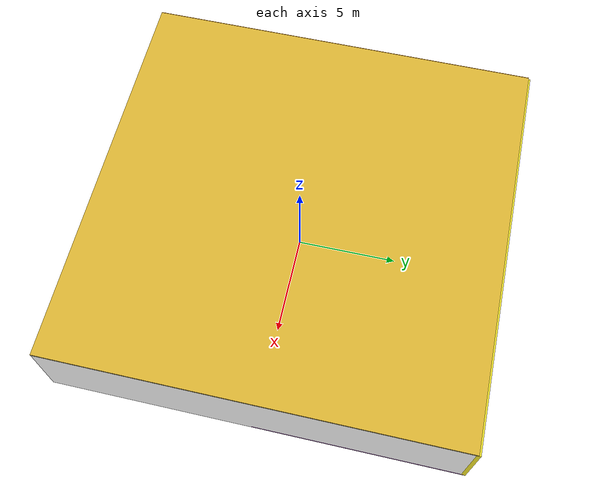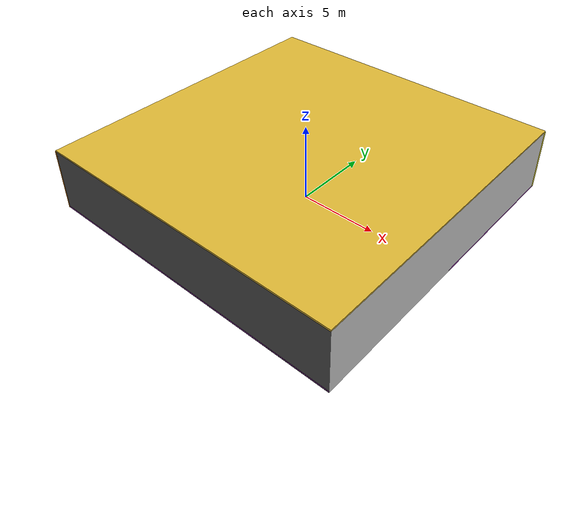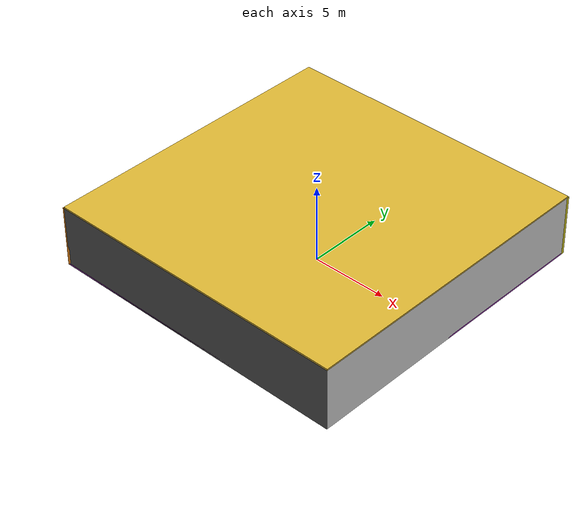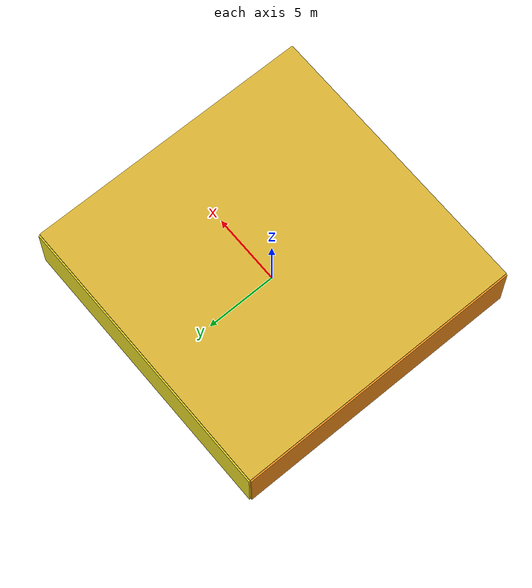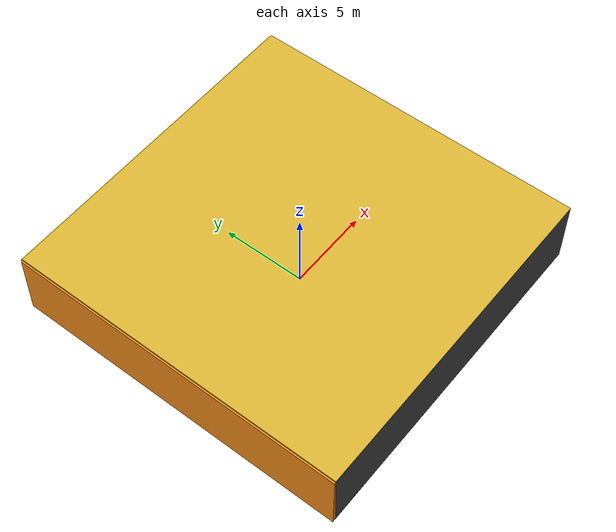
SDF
<sdf version="1.4">
 <world name="default">
  <physics type="ode">
   <max_step_size>0.001</max_step_size>
   <real_time_factor>1</real_time_factor>
   <real_time_update_rate>1000</real_time_update_rate>
   <gravity>0 0 -9.8</gravity>
  </physics>
  <scene><ambient>0.4 0.4 0.4 1</ambient><background>0.7 0.7 0.7 1</background><shadows>1</shadows></scene>
  <model name="Surrounding">
   <static>1</static>
   <link name="Ceiling">
    <collision name="Ceiling_Collision"><geometry><box><size>20 20 0.1</size></box></geometry></collision>
    <visual name="Ceiling_Visual">
     <geometry><box><size>20 20 0.1</size></box></geometry>
     <material>
      <script><uri>file://media/materials/scripts/gazebo.material</uri><name>Gazebo/Gold</name></script>
     </material>
    </visual>
    <pose>0 0 4.05 0 0 0</pose>
   </link>
   <link name="Wall_South">
    <collision name="Wall_South_Collision">
     <geometry><box><size>20 0 4</size></box></geometry>
     <pose>0 0 2 0 -0 0</pose>
    </collision>
    <visual name="Wall_South_Visual">
     <pose>0 0 2 0 -0 0</pose>
     <geometry><box><size>20 0 4</size></box></geometry>
     <material>
      <script><uri>file://media/materials/scripts/gazebo.material</uri><name>Gazebo/DarkGrey</name></script>
     </material>
    </visual>
    <velocity_decay><linear>0</linear><angular>0</angular></velocity_decay>
    <pose>0 -10 0 0 -0 0</pose>
   </link>
   <link name="Wall_East">
    <collision name="Wall_21_Collision">
     <geometry><box><size>20 0 4</size></box></geometry>
     <pose>0 0 2 0 -0 0</pose>
    </collision>
    <visual name="Wall_21_Visual">
     <pose>0 0 2 0 -0 0</pose>
     <geometry><box><size>20 0 4</size></box></geometry>
     <material>
      <script><uri>file://media/materials/scripts/gazebo.material</uri><name>Gazebo/WhiteGlow</name></script>
     </material>
    </visual>
    <velocity_decay><linear>0</linear><angular>0</angular></velocity_decay>
    <pose>10 0 0 0 -0 1.5708</pose>
   </link>
   <link name="Wall_North">
    <collision name="Wall_22_Collision">
     <geometry><box><size>20 0.2 4</size></box></geometry>
     <pose>0 0 2 0 -0 0</pose>
    </collision>
    <visual name="Wall_22_Visual">
     <pose>0 0 2 0 -0 0</pose>
     <geometry><box><size>20 0.2 4</size></box></geometry>
     <material>
      <script><uri>file://media/materials/scripts/gazebo.material</uri><name>Gazebo/YellowGlow</name></script>
     </material>
    </visual>
    <velocity_decay><linear>0</linear><angular>0</angular></velocity_decay>
    <pose>0 10 0 0 -0 0</pose>
   </link>
   <link name="Wall_West">
    <collision name="Wall_23_Collision">
     <geometry><box><size>20 0.2 4</size></box></geometry>
     <pose>0 0 2 0 -0 0</pose>
    </collision>
    <visual name="Wall_23_Visual">
     <pose>0 0 2 0 -0 0</pose>
     <geometry><box><size>20 0.2 4</size></box></geometry>
     <material>
      <script><uri>file://media/materials/scripts/gazebo.material</uri><name>Gazebo/Orange</name></script>
     </material>
    </visual>
    <velocity_decay><linear>0</linear><angular>0</angular></velocity_decay>
    <pose>-10 0 0 0 0 -1.5708</pose>
   </link>
   <link name="Ground_link">
    <collision name="collision">
     <pose>0 0 .05 0 -0 0</pose>
     <geometry><box><size>20 20 0.1</size></box></geometry>
    </collision>
    <visual name="visual">
     <pose>0 0 .05 0 -0 0</pose>
     <geometry><box><size>20 20 0.1</size></box></geometry>
     <material>
      <script><uri>file://media/materials/scripts/gazebo.material</uri><name>Gazebo/PurpleGlow</name></script>
     </material>
    </visual>
   </link>
   <static>1</static>
  </model>
  <spherical_coordinates>
   <surface_model>EARTH_WGS84</surface_model>
   <latitude_deg>0</latitude_deg>
   <longitude_deg>0</longitude_deg>
   <elevation>0</elevation>
   <heading_deg>0</heading_deg>
  </spherical_coordinates>
  <light name="lightball_0" type="diffuse">
   <diffuse>0.8 0.8 0.8 1</diffuse>
   <specular>0.2 0.2 0.2 1</specular>
   <attenuation>
    <range>100</range>
    <constant>0.7</constant>
    <linear>0.01</linear>
    <quadratic>0.001</quadratic>
   </attenuation>
   <direction>-0.5 0.1 -0.9</direction>
   <pose>-8.2925913344 -7.57051754284 3.75496732669 0 0 0</pose>
  </light>
  <light name="lightball_1" type="diffuse">
   <diffuse>0.8 0.8 0.8 1</diffuse>
   <specular>0.2 0.2 0.2 1</specular>
   <attenuation>
    <range>100</range>
    <constant>0.7</constant>
    <linear>0.01</linear>
    <quadratic>0.001</quadratic>
   </attenuation>
   <direction>-0.5 0.1 -0.9</direction>
   <pose>-1.22857555324 9.45243667902 1.97916011184 0 0 0</pose>
  </light>
  <light name="lightball_2" type="diffuse">
   <diffuse>0.8 0.8 0.8 1</diffuse>
   <specular>0.2 0.2 0.2 1</specular>
   <attenuation>
    <range>100</range>
    <constant>0.7</constant>
    <linear>0.01</linear>
    <quadratic>0.001</quadratic>
   </attenuation>
   <direction>-0.5 0.1 -0.9</direction>
   <pose>-9.1084290513 2.08399179117 1.91933753758 0 0 0</pose>
  </light>
  <include><uri>model://table</uri><pose>-4.97246115592 3.78904155062 0 0 0 0.113368131283</pose></include>
  <include>
   <uri>model://construction_cone</uri>
   <pose>-1.18054086114 -7.30522376836 0 0 0 2.86273471579</pose>
  </include>
  <include>
   <uri>model://robocup_3Dsim_goal</uri>
   <pose>-1.13272208516 -4.17140876892 0 0 0 1.94984687184</pose>
  </include>
  <include>
   <uri>model://construction_cone</uri>
   <pose>2.26044301757 -3.84275043441 0 0 0 3.03376530566</pose>
  </include>
  <include>
   <uri>model://robocup_3Dsim_goal</uri>
   <pose>2.20947283452 -1.71262843645 0 0 0 0.109316267133</pose>
  </include>
  <include>
   <uri>model://construction_cone</uri>
   <pose>4.60574374782 -0.863752426288 0 0 0 2.42673607236</pose>
  </include>
  <include><uri>model://cabinet</uri><pose>3.85426292424 6.99474111416 0 0 0 3.03147022949</pose></include>
 </world>
</sdf>

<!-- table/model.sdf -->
<sdf version="1.5">
  <model name="table">
    <static>true</static>
    <link name="link">
      <collision name="surface">
        <pose>0 0 1.0 0 0 0</pose>
        <geometry>
          <box>
            <size>1.5 0.8 0.03</size>
          </box>
        </geometry>
        <surface>
          <friction>
            <ode>
              <mu>0.6</mu>
              <mu2>0.6</mu2>
            </ode>
          </friction>
        </surface>
      </collision>
      <visual name="visual1">
        <pose>0 0 1.0 0 0 0</pose>
        <geometry>
          <box>
            <size>1.5 0.8 0.03</size>
          </box>
        </geometry>
        <material>
          <script>
            <uri>model://media/materials/scripts/gazebo.material</uri>
            <name>Gazebo/Wood</name>
          </script>
        </material>
      </visual>
      <collision name="front_left_leg">
        <pose>0.68 0.38 0.5 0 0 0</pose>
        <geometry>
          <cylinder>
            <radius>0.02</radius>
            <length>1.0</length>
          </cylinder>
        </geometry>
      </collision>
      <visual name="front_left_leg">
        <pose>0.68 0.38 0.5 0 0 0</pose>
        <geometry>
          <cylinder>
            <radius>0.02</radius>
            <length>1.0</length>
          </cylinder>
        </geometry>
        <material>
          <script>
            <uri>model://media/materials/scripts/gazebo.material</uri>
            <name>Gazebo/Grey</name>
          </script>
        </material>
      </visual>
      <collision name="front_right_leg">
        <pose>0.68 -0.38 0.5 0 0 0</pose>
        <geometry>
          <cylinder>
            <radius>0.02</radius>
            <length>1.0</length>
          </cylinder>
        </geometry>
      </collision>
      <visual name="front_right_leg">
        <pose>0.68 -0.38 0.5 0 0 0</pose>
        <geometry>
          <cylinder>
            <radius>0.02</radius>
            <length>1.0</length>
          </cylinder>
        </geometry>
        <material>
          <script>
            <uri>model://media/materials/scripts/gazebo.material</uri>
            <name>Gazebo/Grey</name>
          </script>
        </material>
      </visual>
      <collision name="back_right_leg">
        <pose>-0.68 -0.38 0.5 0 0 0</pose>
        <geometry>
          <cylinder>
            <radius>0.02</radius>
            <length>1.0</length>
          </cylinder>
        </geometry>
      </collision>
      <visual name="back_right_leg">
        <pose>-0.68 -0.38 0.5 0 0 0</pose>
        <geometry>
          <cylinder>
            <radius>0.02</radius>
            <length>1.0</length>
          </cylinder>
        </geometry>
        <material>
          <script>
            <uri>model://media/materials/scripts/gazebo.material</uri>
            <name>Gazebo/Grey</name>
          </script>
        </material>
      </visual>
      <collision name="back_left_leg">
        <pose>-0.68 0.38 0.5 0 0 0</pose>
        <geometry>
          <cylinder>
            <radius>0.02</radius>
            <length>1.0</length>
          </cylinder>
        </geometry>
      </collision>
      <visual name="back_left_leg">
        <pose>-0.68 0.38 0.5 0 0 0</pose>
        <geometry>
          <cylinder>
            <radius>0.02</radius>
            <length>1.0</length>
          </cylinder>
        </geometry>
        <material>
          <script>
            <uri>model://media/materials/scripts/gazebo.material</uri>
            <name>Gazebo/Grey</name>
          </script>
        </material>
      </visual>
    </link>
  </model>
</sdf>

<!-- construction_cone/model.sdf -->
<sdf version="1.5">
  <model name="Construction Cone">
    <link name="link">
      <collision name="collision">
        <geometry>
          <mesh>
            <scale>10 10 10</scale>
            <uri>file://isr-testbed/construction_cone/meshes/construction_cone.dae</uri>
          </mesh>
        </geometry>
      </collision>
      <visual name="visual">
        <geometry>
          <mesh>
            <scale>10 10 10</scale>
            <uri>file://isr-testbed/construction_cone/meshes/construction_cone.dae</uri>
          </mesh>
        </geometry>
      </visual>
    </link>
  </model>
</sdf>

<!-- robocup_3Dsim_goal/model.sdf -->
<sdf version="1.5">
  <model name="robocup_3d_goal">
    <static>true</static>
    <link name="left_post">
      <pose>0 1.05 0.45 0 0 0</pose>
      <collision name="collision">
        <geometry>
          <cylinder>
            <radius>0.05</radius>
            <length>0.9</length>
          </cylinder>
        </geometry>
      </collision>
      <visual name="visual">
        <geometry>
          <cylinder>
            <radius>0.05</radius>
            <length>0.9</length>
          </cylinder>
        </geometry>
        <material>
          <script>
            <uri>file://media/materials/scripts/gazebo.material</uri>
            <name>Gazebo/ZincYellow</name>
          </script>
        </material>
      </visual>
    </link>
    <link name="left_support_horiz_lower">
      <pose>0.30 1.05 0.01 0 0 0</pose>
      <collision name="collision">
        <geometry>
          <box>
            <size>0.50 0.02 0.02</size>
          </box>
        </geometry>
      </collision>
      <visual name="visual">
        <geometry>
          <box>
            <size>0.50 0.02 0.02</size>
          </box>
        </geometry>
        <material>
          <script>
            <uri>file://media/materials/scripts/gazebo.material</uri>
            <name>Gazebo/White</name>
          </script>
        </material>
      </visual>
    </link>
    <link name="left_support_horiz_upper">
      <pose>0.30 1.05 0.79 0 0 0</pose>
      <collision name="collision">
        <geometry>
          <box>
            <size>0.50 0.02 0.02</size>
          </box>
        </geometry>
      </collision>
      <visual name="visual">
        <geometry>
          <box>
            <size>0.50 0.02 0.02</size>
          </box>
        </geometry>
        <material>
          <script>
            <uri>file://media/materials/scripts/gazebo.material</uri>
            <name>Gazebo/White</name>
          </script>
        </material>
      </visual>
    </link>
    <link name="left_support_vertical">
      <pose>0.56 1.05 0.4 0 1.5708 0</pose>
      <collision name="collision">
        <geometry>
          <box>
            <size>0.80 0.02 0.02</size>
          </box>
        </geometry>
      </collision>
      <visual name="visual">
        <geometry>
          <box>
            <size>0.80 0.02 0.02</size>
          </box>
        </geometry>
        <material>
          <script>
            <uri>file://media/materials/scripts/gazebo.material</uri>
            <name>Gazebo/White</name>
          </script>
        </material>
      </visual>
    </link>
    <link name="right_support_horiz_lower">
      <pose>0.30 -1.05 0.01 0 0 0</pose>
      <collision name="collision">
        <geometry>
          <box>
            <size>0.50 0.02 0.02</size>
          </box>
        </geometry>
      </collision>
      <visual name="visual">
        <geometry>
          <box>
            <size>0.50 0.02 0.02</size>
          </box>
        </geometry>
        <material>
          <script>
            <uri>file://media/materials/scripts/gazebo.material</uri>
            <name>Gazebo/White</name>
          </script>
        </material>
      </visual>
    </link>
    <link name="right_support_horiz_upper">
      <pose>0.30 -1.05 0.79 0 0 0</pose>
      <collision name="collision">
        <geometry>
          <box>
            <size>0.50 0.02 0.02</size>
          </box>
        </geometry>
      </collision>
      <visual name="visual">
        <geometry>
          <box>
            <size>0.50 0.02 0.02</size>
          </box>
        </geometry>
        <material>
          <script>
            <uri>file://media/materials/scripts/gazebo.material</uri>
            <name>Gazebo/White</name>
          </script>
        </material>
      </visual>
    </link>
    <link name="right_support_vertical">
      <pose>0.56 -1.05 0.4 0 1.5708 0</pose>
      <collision name="collision">
        <geometry>
          <box>
            <size>0.80 0.02 0.02</size>
          </box>
        </geometry>
      </collision>
      <visual name="visual">
        <geometry>
          <box>
            <size>0.80 0.02 0.02</size>
          </box>
        </geometry>
        <material>
          <script>
            <uri>file://media/materials/scripts/gazebo.material</uri>
            <name>Gazebo/White</name>
          </script>
        </material>
      </visual>
    </link>
    <link name="center_support_horiz_lower">
      <pose>0.56 0 0.01 0 1.5708 0</pose>
      <collision name="collision">
        <geometry>
          <box>
            <size>0.02 2.08 0.02</size>
          </box>
        </geometry>
      </collision>
      <visual name="visual">
        <geometry>
          <box>
            <size>0.02 2.08 0.02</size>
          </box>
        </geometry>
        <material>
          <script>
            <uri>file://media/materials/scripts/gazebo.material</uri>
            <name>Gazebo/White</name>
          </script>
        </material>
      </visual>
    </link>
    <link name="center_support_horiz_upper">
      <pose>0.56 0 0.79 0 1.5708 0</pose>
      <collision name="collision">
        <geometry>
          <box>
            <size>0.02 2.08 0.02</size>
          </box>
        </geometry>
      </collision>
      <visual name="visual">
        <geometry>
          <box>
            <size>0.02 2.08 0.02</size>
          </box>
        </geometry>
        <material>
          <script>
            <uri>file://media/materials/scripts/gazebo.material</uri>
            <name>Gazebo/White</name>
          </script>
        </material>
      </visual>
    </link>
    <link name="right_post">
      <pose>0 -1.05 0.45 0 0 0</pose>
      <collision name="collision">
        <geometry>
          <cylinder>
            <radius>0.05</radius>
            <length>0.9</length>
          </cylinder>
        </geometry>
      </collision>
      <visual name="visual">
        <geometry>
          <cylinder>
            <radius>0.05</radius>
            <length>0.9</length>
          </cylinder>
        </geometry>
        <material>
          <script>
            <uri>file://media/materials/scripts/gazebo.material</uri>
            <name>Gazebo/ZincYellow</name>
          </script>
        </material>
      </visual>
    </link>
    <link name="crossbar">
      <pose>0 0 0.85 1.57 1.57 0</pose>
      <collision name="collision">
        <geometry>
          <cylinder>
            <radius>0.05</radius>
            <length>2.0</length>
          </cylinder>
        </geometry>
      </collision>
      <visual name="visual">
        <geometry>
          <cylinder>
            <radius>0.05</radius>
            <length>2.0</length>
          </cylinder>
        </geometry>
        <material>
          <script>
            <uri>file://media/materials/scripts/gazebo.material</uri>
            <name>Gazebo/ZincYellow</name>
          </script>
        </material>
      </visual>
    </link>
    <link name="center_net">
      <pose>0.56 0 0.40 0 0 0</pose>
      <collision name="collision">
        <geometry>
          <box>
            <size>0.01 2.1 0.80</size>
          </box>
        </geometry>
      </collision>
      <visual name="visual">
        <geometry>
          <box>
            <size>0.01 2.1 0.80</size>
          </box>
        </geometry>
        <material>
          <script>
            <uri>model://../model_source/models/robocup09_spl_field/materials/scripts/</uri>
            <uri>model://../model_source/models/robocup09_spl_field/materials/textures/</uri>
            <name>RoboCup/Net</name>
          </script>
        </material>
      </visual>
    </link>
    <link name="left_net">
      <pose>0.30 1.05 0.40 0 0 0</pose>
      <collision name="collision">
        <geometry>
          <box>
            <size>0.50 0.01 0.76</size>
          </box>
        </geometry>
      </collision>
      <visual name="visual">
        <geometry>
          <box>
            <size>0.50 0.01 0.76</size>
          </box>
        </geometry>
        <material>
          <script>
            <uri>model://../model_source/models/robocup09_spl_field/materials/scripts/</uri>
            <uri>model://../model_source/models/robocup09_spl_field/materials/textures/</uri>
            <name>RoboCup/Net</name>
          </script>
        </material>
      </visual>
    </link>
    <link name="right_net">
      <pose>0.30 -1.05 0.40 0 0 0</pose>
      <collision name="collision">
        <geometry>
          <box>
            <size>0.50 0.01 0.76</size>
          </box>
        </geometry>
      </collision>
      <visual name="visual">
        <geometry>
          <box>
            <size>0.50 0.01 0.76</size>
          </box>
        </geometry>
        <material>
          <script>
            <uri>model://../model_source/models/robocup09_spl_field/materials/scripts/</uri>
            <uri>model://../model_source/models/robocup09_spl_field/materials/textures/</uri>
            <name>RoboCup/Net</name>
          </script>
        </material>
      </visual>
    </link>
  </model>
</sdf>

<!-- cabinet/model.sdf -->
<sdf version="1.5">
  <model name="cabinet">
    <static>true</static>
    <link name="cabinet_bottom_plate">
      <inertial>
        <pose>0 0 -1 0 0 0</pose>
        <inertia>
          <ixx>2.050000</ixx>
          <ixy>0</ixy>
          <ixz>0</ixz>
          <iyy>2.050000</iyy>
          <iyz>0</iyz>
          <izz>2.050000</izz>
        </inertia>
        <mass>25.000000</mass>
      </inertial>
      <collision name="cabinet_bottom_plate_geom">
        <pose>0 0 0.010000 0 0 0</pose>
        <geometry>
          <box>
            <size>0.450000 0.450000 0.020000</size>
          </box>
        </geometry>
      </collision>
      <visual name="cabinet_bottom_plate_geom_visual">
        <pose>0 0 0.010000 0 0 0</pose>
        <geometry>
          <box>
            <size>0.450000 0.450000 0.020000</size>
          </box>
        </geometry>
        <material>
          <script>
            <uri>model://media/materials/scripts/gazebo.material</uri>
            <name>Gazebo/Wood</name>
          </script>
        </material>
      </visual>
      <collision name="cabinet_bottom_plate_geom_cabinet_back_plate">
        <pose>0.235000 0 0.510000 0 0 0</pose>
        <geometry>
          <box>
            <size>0.020000 0.450000 1.020000</size>
          </box>
        </geometry>
      </collision>
      <visual name="cabinet_bottom_plate_geom_cabinet_back_plate_visual">
        <pose>0.235000 0 0.510000 0 0 0</pose>
        <geometry>
          <box>
            <size>0.020000 0.450000 1.020000</size>
          </box>
        </geometry>
        <material>
          <script>
            <uri>model://media/materials/scripts/gazebo.material</uri>
            <name>Gazebo/Wood</name>
          </script>
        </material>
      </visual>
      <collision name="cabinet_bottom_plate_geom_cabinet_left_plate">
        <pose>0 0.235000 0.510000 0 0 0</pose>
        <geometry>
          <box>
            <size>0.450000 0.020000 1.020000</size>
          </box>
        </geometry>
      </collision>
      <visual name="cabinet_bottom_plate_geom_cabinet_left_plate_visual">
        <pose>0 0.235000 0.510000 0 0 0</pose>
        <geometry>
          <box>
            <size>0.450000 0.020000 1.020000</size>
          </box>
        </geometry>
        <material>
          <script>
            <uri>model://media/materials/scripts/gazebo.material</uri>
            <name>Gazebo/Wood</name>
          </script>
        </material>
      </visual>
      <collision name="cabinet_bottom_plate_geom_cabinet_middle_plate">
        <pose>0 0 0.510000 0 0 0</pose>
        <geometry>
          <box>
            <size>0.450000 0.450000 0.020000</size>
          </box>
        </geometry>
      </collision>
      <visual name="cabinet_bottom_plate_geom_cabinet_middle_plate_visual">
        <pose>0 0 0.510000 0 0 0</pose>
        <geometry>
          <box>
            <size>0.450000 0.450000 0.020000</size>
          </box>
        </geometry>
        <material>
          <script>
            <uri>model://media/materials/scripts/gazebo.material</uri>
            <name>Gazebo/Wood</name>
          </script>
        </material>
      </visual>
      <collision name="cabinet_bottom_plate_geom_cabinet_right_plate">
        <pose>0 -0.235000 0.510000 0 0 0</pose>
        <geometry>
          <box>
            <size>0.450000 0.020000 1.020000</size>
          </box>
        </geometry>
      </collision>
      <visual name="cabinet_bottom_plate_geom_cabinet_right_plate_visual">
        <pose>0 -0.235000 0.510000 0 0 0</pose>
        <geometry>
          <box>
            <size>0.450000 0.020000 1.020000</size>
          </box>
        </geometry>
        <material>
          <script>
            <uri>model://media/materials/scripts/gazebo.material</uri>
            <name>Gazebo/Wood</name>
          </script>
        </material>
      </visual>
      <collision name="cabinet_bottom_plate_geom_cabinet_top_plate">
        <pose>0 0 1.010000 0 0 0</pose>
        <geometry>
          <box>
            <size>0.450000 0.450000 0.020000</size>
          </box>
        </geometry>
      </collision>
      <visual name="cabinet_bottom_plate_geom_cabinet_top_plate_visual">
        <pose>0 0 1.010000 0 0 0</pose>
        <geometry>
          <box>
            <size>0.450000 0.450000 0.020000</size>
          </box>
        </geometry>
        <material>
          <script>
            <uri>model://media/materials/scripts/gazebo.material</uri>
            <name>Gazebo/Wood</name>
          </script>
        </material>
      </visual>
    </link>
  </model>
</sdf>
